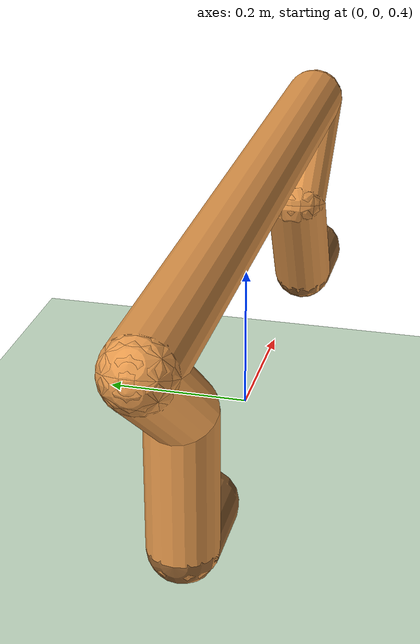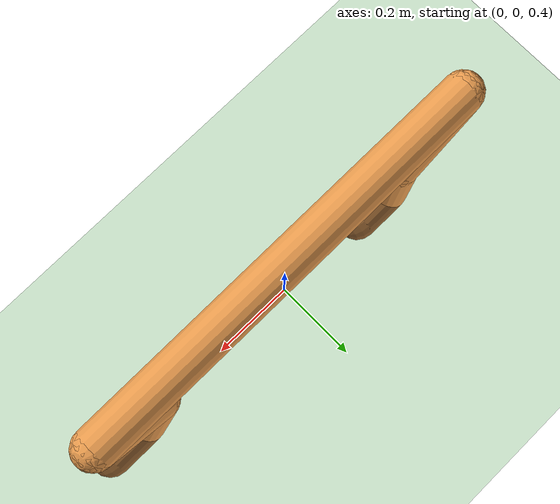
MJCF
<mujoco model="half_cheetah">
    <option timestep="0.01" gravity="0 0 -9.81"/>

    <default>
        <joint armature="0.1" damping="0.5" limited="true"/>
        <geom contype="1" conaffinity="1" condim="3" friction="0.8 0.1 0.1" margin="0.01"/>
    </default>

    <worldbody>
        <!-- Ground plane -->
        <geom type="plane" size="50 50 0.1" rgba="0.8 0.9 0.8 1"/>

        <!-- Torso -->
        <body name="torso" pos="0 0 0.7">
            <joint name="root" type="free"/>
            <geom name="torso_geom" type="capsule" fromto="-0.5 0 0 0.5 0 0" size="0.046" rgba="0.9 0.6 0.3 1"/>

            <!-- Back thigh -->
            <body name="back_thigh" pos="-0.5 0 0">
                <joint name="back_hip" type="hinge" axis="0 1 0" range="-50 90"/>
                <geom type="capsule" fromto="0 0 0 0.16 0 -0.13" size="0.046" rgba="0.9 0.6 0.3 1"/>

                <!-- Back shin -->
                <body name="back_shin" pos="0.16 0 -0.13">
                    <joint name="back_knee" type="hinge" axis="0 1 0" range="-150 0"/>
                    <geom type="capsule" fromto="0 0 0 0 0 -0.19" size="0.046" rgba="0.9 0.6 0.3 1"/>

                    <!-- Back foot -->
                    <body name="back_foot" pos="0 0 -0.19">
                        <joint name="back_ankle" type="hinge" axis="0 1 0" range="-50 50"/>
                        <geom type="capsule" fromto="0 0 0 0.1 0 0" size="0.046" rgba="0.6 0.4 0.2 1"/>
                    </body>
                </body>
            </body>

            <!-- Front thigh -->
            <body name="front_thigh" pos="0.5 0 0">
                <joint name="front_hip" type="hinge" axis="0 1 0" range="-50 90"/>
                <geom type="capsule" fromto="0 0 0 -0.14 0 -0.13" size="0.046" rgba="0.9 0.6 0.3 1"/>

                <!-- Front shin -->
                <body name="front_shin" pos="-0.14 0 -0.13">
                    <joint name="front_knee" type="hinge" axis="0 1 0" range="-150 0"/>
                    <geom type="capsule" fromto="0 0 0 0.07 0 -0.15" size="0.046" rgba="0.9 0.6 0.3 1"/>

                    <!-- Front foot -->
                    <body name="front_foot" pos="0.07 0 -0.15">
                        <joint name="front_ankle" type="hinge" axis="0 1 0" range="-50 50"/>
                        <geom type="capsule" fromto="0 0 0 0.1 0 0" size="0.046" rgba="0.6 0.4 0.2 1"/>
                    </body>
                </body>
            </body>
        </body>
    </worldbody>

    <actuator>
        <motor joint="back_hip" ctrlrange="-1 1" gear="120"/>
        <motor joint="back_knee" ctrlrange="-1 1" gear="90"/>
        <motor joint="back_ankle" ctrlrange="-1 1" gear="60"/>
        <motor joint="front_hip" ctrlrange="-1 1" gear="120"/>
        <motor joint="front_knee" ctrlrange="-1 1" gear="60"/>
        <motor joint="front_ankle" ctrlrange="-1 1" gear="30"/>
    </actuator>

    <sensor>
        <!-- Torso sensors -->
        <framepos objtype="body" objname="torso"/>
        <framequat objtype="body" objname="torso"/>
        <framelinvel objtype="body" objname="torso"/>
        <frameangvel objtype="body" objname="torso"/>

        <!-- Joint position sensors -->
        <jointpos joint="back_hip"/>
        <jointpos joint="back_knee"/>
        <jointpos joint="back_ankle"/>
        <jointpos joint="front_hip"/>
        <jointpos joint="front_knee"/>
        <jointpos joint="front_ankle"/>

        <!-- Joint velocity sensors -->
        <jointvel joint="back_hip"/>
        <jointvel joint="back_knee"/>
        <jointvel joint="back_ankle"/>
        <jointvel joint="front_hip"/>
        <jointvel joint="front_knee"/>
        <jointvel joint="front_ankle"/>
    </sensor>
</mujoco>
